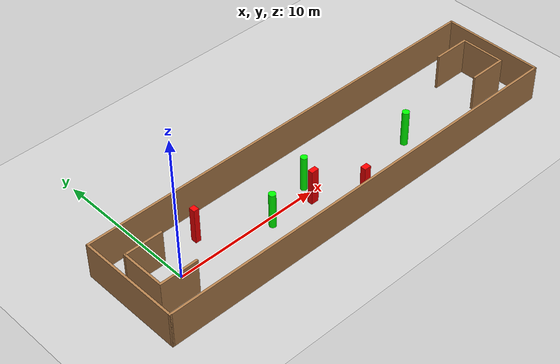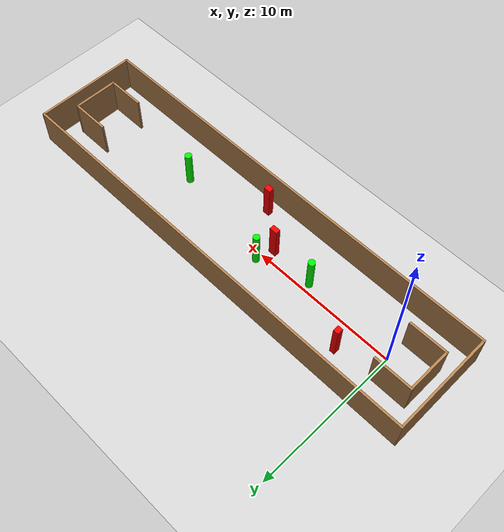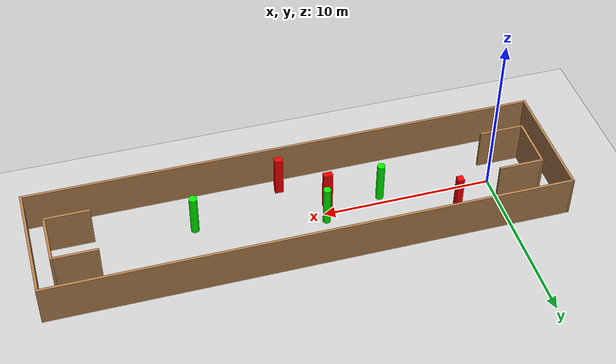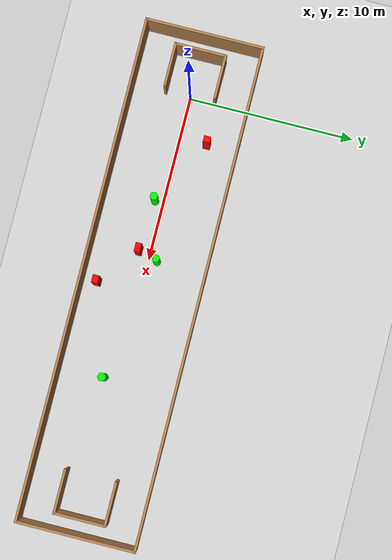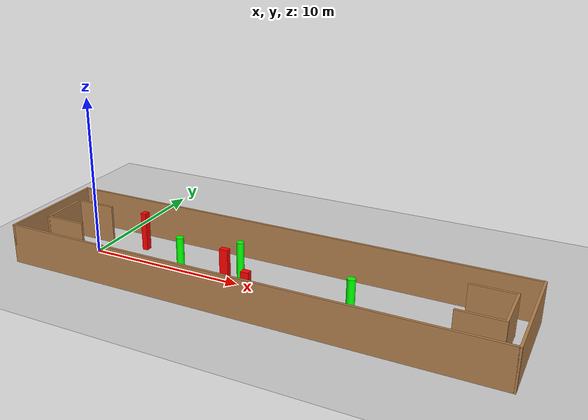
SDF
<sdf version="1.7">
 <world name="default">
  <light name="sun" type="directional">
   <pose>0 0 10 0 -0 0</pose>
   <diffuse>0.8 0.8 0.8 1</diffuse>
   <specular>0.2 0.2 0.2 1</specular>
   <attenuation>
    <range>1000</range>
    <constant>0.9</constant>
    <linear>0.01</linear>
    <quadratic>0.001</quadratic>
   </attenuation>
   <direction>-0.5 0.1 -0.9</direction>
   <spot><inner_angle>0</inner_angle><outer_angle>0</outer_angle><falloff>0</falloff></spot>
  </light>
  <model name="ground_plane">
   <static>1</static>
   <link name="link">
    <collision name="collision">
     <geometry><plane><normal>0 0 1</normal><size>100 100</size></plane></geometry>
     <surface>
      <contact><collide_bitmask>65535</collide_bitmask></contact>
      <friction><ode><mu>100</mu><mu2>50</mu2></ode></friction>
     </surface>
    </collision>
    <visual name="visual">
     <cast_shadows>0</cast_shadows>
     <geometry><plane><normal>0 0 1</normal><size>100 100</size></plane></geometry>
     <material>
      <script><uri>file://media/materials/scripts/gazebo.material</uri><name>Gazebo/Grey</name></script>
     </material>
    </visual>
   </link>
  </model>
  <gravity>0 0 -9.8</gravity>
  <magnetic_field>6e-06 2.3e-05 -4.2e-05</magnetic_field>
  <atmosphere type="adiabatic"/>
  <physics type="ode">
   <max_step_size>0.001</max_step_size>
   <real_time_factor>1</real_time_factor>
   <real_time_update_rate>1000</real_time_update_rate>
  </physics>
  <scene><ambient>0.4 0.4 0.4 1</ambient><background>0.7 0.7 0.7 1</background><shadows>1</shadows></scene>
  <spherical_coordinates>
   <surface_model>EARTH_WGS84</surface_model>
   <latitude_deg>0</latitude_deg>
   <longitude_deg>0</longitude_deg>
   <elevation>0</elevation>
   <heading_deg>0</heading_deg>
  </spherical_coordinates>
  <model name="my_base_walls">
   <link name="Wall_0">
    <collision name="Wall_0_Collision">
     <geometry><box><size>7.15 0.15 2.5</size></box></geometry>
     <pose>0 0 1.25 0 -0 0</pose>
    </collision>
    <visual name="Wall_0_Visual">
     <pose>0 0 1.25 0 -0 0</pose>
     <geometry><box><size>7.15 0.15 2.5</size></box></geometry>
     <material>
      <script><uri>file://media/materials/scripts/gazebo.material</uri><name>Gazebo/Wood</name></script>
      <ambient>1 1 1 1</ambient>
     </material>
     <meta><layer>0</layer></meta>
    </visual>
    <pose>-15 0 0 0 -0 1.5708</pose>
   </link>
   <link name="Wall_10">
    <collision name="Wall_10_Collision">
     <geometry><box><size>2.65 0.15 2.5</size></box></geometry>
     <pose>0 0 1.25 0 -0 0</pose>
    </collision>
    <visual name="Wall_10_Visual">
     <pose>0 0 1.25 0 -0 0</pose>
     <geometry><box><size>2.65 0.15 2.5</size></box></geometry>
     <material>
      <script><uri>file://media/materials/scripts/gazebo.material</uri><name>Gazebo/Wood</name></script>
      <ambient>1 1 1 1</ambient>
     </material>
     <meta><layer>0</layer></meta>
    </visual>
    <pose>-12.75 -1.5 0 0 -0 0</pose>
   </link>
   <link name="Wall_12">
    <collision name="Wall_12_Collision">
     <geometry><box><size>2.65 0.15 2.5</size></box></geometry>
     <pose>0 0 1.25 0 -0 0</pose>
    </collision>
    <visual name="Wall_12_Visual">
     <pose>0 0 1.25 0 -0 0</pose>
     <geometry><box><size>2.65 0.15 2.5</size></box></geometry>
     <material>
      <script><uri>file://media/materials/scripts/gazebo.material</uri><name>Gazebo/Wood</name></script>
      <ambient>1 1 1 1</ambient>
     </material>
     <meta><layer>0</layer></meta>
    </visual>
    <pose>-12.75 1.5 0 0 -0 0</pose>
   </link>
   <link name="Wall_14">
    <collision name="Wall_14_Collision">
     <geometry><box><size>3.15 0.15 2.5</size></box></geometry>
     <pose>0 0 1.25 0 -0 0</pose>
    </collision>
    <visual name="Wall_14_Visual">
     <pose>0 0 1.25 0 -0 0</pose>
     <geometry><box><size>3.15 0.15 2.5</size></box></geometry>
     <material>
      <script><uri>file://media/materials/scripts/gazebo.material</uri><name>Gazebo/Wood</name></script>
      <ambient>1 1 1 1</ambient>
     </material>
     <meta><layer>0</layer></meta>
    </visual>
    <pose>14 0 0 0 -0 -1.5708</pose>
   </link>
   <link name="Wall_15">
    <collision name="Wall_15_Collision">
     <geometry><box><size>2.65 0.15 2.5</size></box></geometry>
     <pose>0 0 1.25 0 -0 0</pose>
    </collision>
    <visual name="Wall_15_Visual">
     <pose>0 0 1.25 0 -0 0</pose>
     <geometry><box><size>2.65 0.15 2.5</size></box></geometry>
     <material>
      <script><uri>file://media/materials/scripts/gazebo.material</uri><name>Gazebo/Wood</name></script>
      <ambient>1 1 1 1</ambient>
     </material>
     <meta><layer>0</layer></meta>
    </visual>
    <pose>12.75 -1.5 0 0 -0 3.14159</pose>
   </link>
   <link name="Wall_17">
    <collision name="Wall_17_Collision">
     <geometry><box><size>2.65 0.15 2.5</size></box></geometry>
     <pose>0 0 1.25 0 -0 0</pose>
    </collision>
    <visual name="Wall_17_Visual">
     <pose>0 0 1.25 0 -0 0</pose>
     <geometry><box><size>2.65 0.15 2.5</size></box></geometry>
     <material>
      <script><uri>file://media/materials/scripts/gazebo.material</uri><name>Gazebo/Wood</name></script>
      <ambient>1 1 1 1</ambient>
     </material>
     <meta><layer>0</layer></meta>
    </visual>
    <pose>12.75 1.5 0 0 -0 3.14159</pose>
   </link>
   <link name="Wall_2">
    <collision name="Wall_2_Collision">
     <geometry><box><size>30.15 0.15 2.5</size></box></geometry>
     <pose>0 0 1.25 0 -0 0</pose>
    </collision>
    <visual name="Wall_2_Visual">
     <pose>0 0 1.25 0 -0 0</pose>
     <geometry><box><size>30.15 0.15 2.5</size></box></geometry>
     <material>
      <script><uri>file://media/materials/scripts/gazebo.material</uri><name>Gazebo/Wood</name></script>
      <ambient>1 1 1 1</ambient>
     </material>
     <meta><layer>0</layer></meta>
    </visual>
    <pose>-0 -3.5 0 0 -0 0</pose>
   </link>
   <link name="Wall_4">
    <collision name="Wall_4_Collision">
     <geometry><box><size>30.15 0.15 2.5</size></box></geometry>
     <pose>0 0 1.25 0 -0 0</pose>
    </collision>
    <visual name="Wall_4_Visual">
     <pose>0 0 1.25 0 -0 0</pose>
     <geometry><box><size>30.15 0.15 2.5</size></box></geometry>
     <material>
      <script><uri>file://media/materials/scripts/gazebo.material</uri><name>Gazebo/Wood</name></script>
      <ambient>1 1 1 1</ambient>
     </material>
     <meta><layer>0</layer></meta>
    </visual>
    <pose>-0 3.5 0 0 -0 0</pose>
   </link>
   <link name="Wall_6">
    <collision name="Wall_6_Collision">
     <geometry><box><size>7.15 0.15 2.5</size></box></geometry>
     <pose>0 0 1.25 0 -0 0</pose>
    </collision>
    <visual name="Wall_6_Visual">
     <pose>0 0 1.25 0 -0 0</pose>
     <geometry><box><size>7.15 0.15 2.5</size></box></geometry>
     <material>
      <script><uri>file://media/materials/scripts/gazebo.material</uri><name>Gazebo/Wood</name></script>
      <ambient>1 1 1 1</ambient>
     </material>
     <meta><layer>0</layer></meta>
    </visual>
    <pose>15 0 0 0 -0 -1.5708</pose>
   </link>
   <link name="Wall_9">
    <collision name="Wall_9_Collision">
     <geometry><box><size>3.15 0.15 2.5</size></box></geometry>
     <pose>0 0 1.25 0 -0 0</pose>
    </collision>
    <visual name="Wall_9_Visual">
     <pose>0 0 1.25 0 -0 0</pose>
     <geometry><box><size>3.15 0.15 2.5</size></box></geometry>
     <material>
      <script><uri>file://media/materials/scripts/gazebo.material</uri><name>Gazebo/Wood</name></script>
      <ambient>1 1 1 1</ambient>
     </material>
     <meta><layer>0</layer></meta>
    </visual>
    <pose>-14 0 0 0 -0 -1.5708</pose>
   </link>
   <static>1</static>
   <pose>11.5 0 0 0 -0 0</pose>
  </model>
  <model name="cylinder1">
   <static>1</static>
   <link name="link">
    <inertial>
     <mass>1</mass>
     <inertia><ixx>0.5</ixx><ixy>0</ixy><ixz>0</ixz><iyy>0.5</iyy><iyz>0</iyz><izz>1</izz></inertia>
    </inertial>
    <collision name="collision">
     <geometry><cylinder><radius>0.22286252322948455</radius><length>2.5</length></cylinder></geometry>
    </collision>
    <visual name="visual">
     <geometry><cylinder><radius>0.22286252322948455</radius><length>2.5</length></cylinder></geometry>
     <material>
      <ambient>0 1 0 1</ambient>
      <diffuse>0 1 0 1</diffuse>
      <specular>0.1 0.1 0.1 1</specular>
      <emissive>0 0 0 0</emissive>
     </material>
    </visual>
   </link>
   <pose>9.980690205849065 0.5092725360932224 1.25 0 0 0</pose>
  </model>
  <model name="cylinder2">
   <static>1</static>
   <link name="link">
    <inertial>
     <mass>1</mass>
     <inertia><ixx>0.5</ixx><ixy>0</ixy><ixz>0</ixz><iyy>0.5</iyy><iyz>0</iyz><izz>1</izz></inertia>
    </inertial>
    <collision name="collision">
     <geometry><cylinder><radius>0.23150858119809908</radius><length>2.5</length></cylinder></geometry>
    </collision>
    <visual name="visual">
     <geometry><cylinder><radius>0.23150858119809908</radius><length>2.5</length></cylinder></geometry>
     <material>
      <ambient>0 1 0 1</ambient>
      <diffuse>0 1 0 1</diffuse>
      <specular>0.1 0.1 0.1 1</specular>
      <emissive>0 0 0 0</emissive>
     </material>
    </visual>
   </link>
   <pose>6.489995714059306 -0.5038920166178329 1.25 0 0 0</pose>
  </model>
  <model name="cylinder3">
   <static>1</static>
   <link name="link">
    <inertial>
     <mass>1</mass>
     <inertia><ixx>0.5</ixx><ixy>0</ixy><ixz>0</ixz><iyy>0.5</iyy><iyz>0</iyz><izz>1</izz></inertia>
    </inertial>
    <collision name="collision">
     <geometry><cylinder><radius>0.24101064518486176</radius><length>2.5</length></cylinder></geometry>
    </collision>
    <visual name="visual">
     <geometry><cylinder><radius>0.24101064518486176</radius><length>2.5</length></cylinder></geometry>
     <material>
      <ambient>0 1 0 1</ambient>
      <diffuse>0 1 0 1</diffuse>
      <specular>0.1 0.1 0.1 1</specular>
      <emissive>0 0 0 0</emissive>
     </material>
    </visual>
   </link>
   <pose>17.34149342914054 -0.8140714261037041 1.25 0 0 0</pose>
  </model>
  <model name="box1">
   <static>1</static>
   <link name="link">
    <inertial>
     <mass>1</mass>
     <inertia><ixx>0.083</ixx><ixy>0</ixy><ixz>0</ixz><iyy>0.083</iyy><iyz>0</iyz><izz>0.083</izz></inertia>
    </inertial>
    <collision name="collision">
     <geometry><box><size>0.5329824830309466 0.3424943786881771 2.5</size></box></geometry>
    </collision>
    <visual name="visual">
     <geometry><box><size>0.5329824830309466 0.3424943786881771 2.5</size></box></geometry>
     <material>
      <ambient>1 0 0 1</ambient>
      <diffuse>1 0 0 1</diffuse>
      <specular>0.1 0.1 0.1 1</specular>
      <emissive>0 0 0 0</emissive>
     </material>
    </visual>
    <sensor name="my_contact" type="contact">
     <contact><collision>box_collision</collision><topic>__default_topic__</topic></contact>
    </sensor>
   </link>
   <pose>9.597835220715892 -0.6642388766862055 1.25 0 0 0</pose>
  </model>
  <model name="box2">
   <static>1</static>
   <link name="link">
    <inertial>
     <mass>1</mass>
     <inertia><ixx>0.083</ixx><ixy>0</ixy><ixz>0</ixz><iyy>0.083</iyy><iyz>0</iyz><izz>0.083</izz></inertia>
    </inertial>
    <collision name="collision">
     <geometry><box><size>0.36406825490394745 0.41633186287726165 2.5</size></box></geometry>
    </collision>
    <visual name="visual">
     <geometry><box><size>0.36406825490394745 0.41633186287726165 2.5</size></box></geometry>
     <material>
      <ambient>1 0 0 1</ambient>
      <diffuse>1 0 0 1</diffuse>
      <specular>0.1 0.1 0.1 1</specular>
      <emissive>0 0 0 0</emissive>
     </material>
    </visual>
    <sensor name="my_contact" type="contact">
     <contact><collision>box_collision</collision><topic>__default_topic__</topic></contact>
    </sensor>
   </link>
   <pose>2.51930200969481 1.6619715595539288 1.25 0 0 0</pose>
  </model>
  <model name="box3">
   <static>1</static>
   <link name="link">
    <inertial>
     <mass>1</mass>
     <inertia><ixx>0.083</ixx><ixy>0</ixy><ixz>0</ixz><iyy>0.083</iyy><iyz>0</iyz><izz>0.083</izz></inertia>
    </inertial>
    <collision name="collision">
     <geometry><box><size>0.47739094150314704 0.3743957143032661 2.5</size></box></geometry>
    </collision>
    <visual name="visual">
     <geometry><box><size>0.47739094150314704 0.3743957143032661 2.5</size></box></geometry>
     <material>
      <ambient>1 0 0 1</ambient>
      <diffuse>1 0 0 1</diffuse>
      <specular>0.1 0.1 0.1 1</specular>
      <emissive>0 0 0 0</emissive>
     </material>
    </visual>
    <sensor name="my_contact" type="contact">
     <contact><collision>box_collision</collision><topic>__default_topic__</topic></contact>
    </sensor>
   </link>
   <pose>11.982251734088226 -2.5788536062822294 1.25 0 0 0</pose>
  </model>
 </world>
</sdf>
